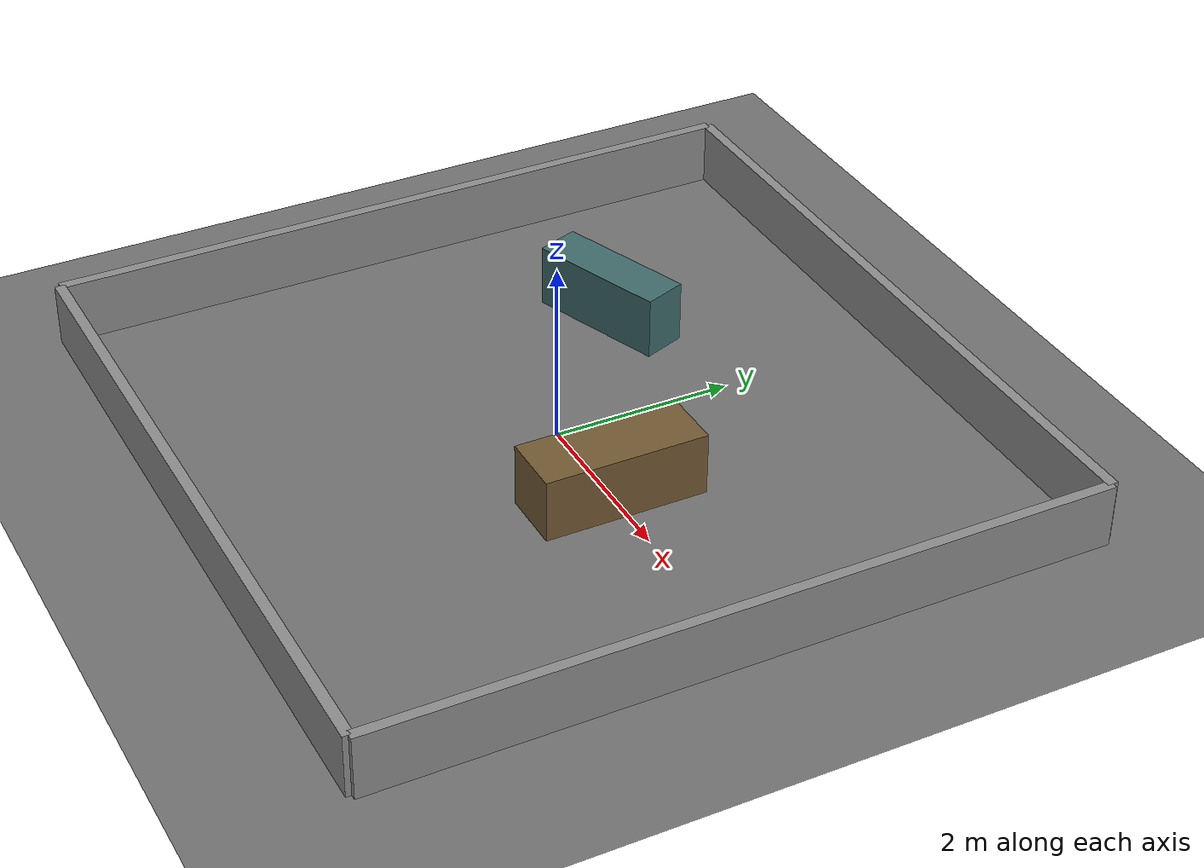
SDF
<?xml version="1.0" ?>
<!--
  SDF 世界文件描述“机器人所在的环境”，而 URDF/Xacro 描述“机器人自身”。
  本文件定义重力、光照和一块有碰撞与摩擦的地面。
-->
<sdf version="1.9">
  <world name="fishbot_world">
    <!-- 世界坐标系使用 Z 轴向上；重力单位是 m/s^2。 -->
    <gravity>0 0 -9.81</gravity>

    <plugin filename="gz-sim-physics-system" name="gz::sim::systems::Physics"/>
    <plugin filename="gz-sim-user-commands-system" name="gz::sim::systems::UserCommands"/>
    <plugin filename="gz-sim-scene-broadcaster-system" name="gz::sim::systems::SceneBroadcaster"/>
    <plugin filename="gz-sim-sensors-system" name="gz::sim::systems::Sensors">
      <render_engine>ogre2</render_engine>
    </plugin>

    <!-- 物理步长越小通常越稳定，但会消耗更多计算资源。 -->
    <physics name="default_physics" type="ignored">
      <max_step_size>0.001</max_step_size>
      <real_time_factor>1.0</real_time_factor>
      <real_time_update_rate>1000</real_time_update_rate>
    </physics>

    <!-- 场景的背景、环境光和阴影。 -->
    <scene>
      <ambient>0.4 0.4 0.4 1</ambient>
      <background>0.7 0.7 0.7 1</background>
      <shadows>true</shadows>
    </scene>

    <!-- 平行光模拟太阳。 -->
    <light name="sun" type="directional">
      <cast_shadows>true</cast_shadows>
      <pose>0 0 10 0 0 0</pose>
      <diffuse>0.8 0.8 0.8 1</diffuse>
      <specular>0.2 0.2 0.2 1</specular>
      <attenuation>
        <range>1000</range>
        <constant>0.9</constant>
        <linear>0.01</linear>
        <quadratic>0.001</quadratic>
      </attenuation>
      <direction>-0.5 0.1 -0.9</direction>
    </light>

    <!--
      static=true 表示地面不会被重力推动。
      plane 的 normal 决定法向；0 0 1 表示地面朝上，位于世界 z=0。
      size 是可视网格的长和宽，单位为米。
    -->
    <model name="ground_plane">
      <static>true</static>
      <link name="ground_link">
        <collision name="ground_collision">
          <geometry>
            <plane>
              <normal>0 0 1</normal>
              <size>100 100</size>
            </plane>
          </geometry>
          <!-- 摩擦系数越大，轮子越不容易打滑。 -->
          <surface>
            <friction>
              <ode>
                <mu>1.0</mu>
                <mu2>1.0</mu2>
              </ode>
            </friction>
          </surface>
        </collision>
        <visual name="ground_visual">
          <geometry>
            <plane>
              <normal>0 0 1</normal>
              <size>100 100</size>
            </plane>
          </geometry>
          <material>
            <ambient>0.35 0.35 0.35 1</ambient>
            <diffuse>0.45 0.45 0.45 1</diffuse>
            <specular>0.05 0.05 0.05 1</specular>
          </material>
        </visual>
      </link>
    </model>

    <model name="wall_north">
      <static>true</static>
      <!-- pose 的格式是 x y z roll pitch yaw；这里 z=0.35 表示 0.7 m 高墙的中心高度。 -->
      <pose>0 4 0.35 0 0 0</pose>
      <link name="link">
        <!-- 每面墙都同时有 collision 和 visual：前者用于碰撞，后者用于显示。 -->
        <collision name="collision"><geometry><box><size>8 0.12 0.7</size></box></geometry></collision>
        <visual name="visual"><geometry><box><size>8 0.12 0.7</size></box></geometry><material><ambient>0.55 0.55 0.55 1</ambient><diffuse>0.55 0.55 0.55 1</diffuse></material></visual>
      </link>
    </model>
    <model name="wall_south">
      <static>true</static>
      <pose>0 -4 0.35 0 0 0</pose>
      <link name="link">
        <collision name="collision"><geometry><box><size>8 0.12 0.7</size></box></geometry></collision>
        <visual name="visual"><geometry><box><size>8 0.12 0.7</size></box></geometry><material><ambient>0.55 0.55 0.55 1</ambient><diffuse>0.55 0.55 0.55 1</diffuse></material></visual>
      </link>
    </model>
    <model name="wall_east">
      <static>true</static>
      <pose>4 0 0.35 0 0 0</pose>
      <link name="link">
        <collision name="collision"><geometry><box><size>0.12 8 0.7</size></box></geometry></collision>
        <visual name="visual"><geometry><box><size>0.12 8 0.7</size></box></geometry><material><ambient>0.55 0.55 0.55 1</ambient><diffuse>0.55 0.55 0.55 1</diffuse></material></visual>
      </link>
    </model>
    <model name="wall_west">
      <static>true</static>
      <pose>-4 0 0.35 0 0 0</pose>
      <link name="link">
        <collision name="collision"><geometry><box><size>0.12 8 0.7</size></box></geometry></collision>
        <visual name="visual"><geometry><box><size>0.12 8 0.7</size></box></geometry><material><ambient>0.55 0.55 0.55 1</ambient><diffuse>0.55 0.55 0.55 1</diffuse></material></visual>
      </link>
    </model>
    <model name="center_obstacle">
      <static>true</static>
      <!-- 中间障碍物用于测试激光雷达、代价地图和导航避障。 -->
      <pose>1.2 0.0 0.35 0 0 0</pose>
      <link name="link">
        <collision name="collision"><geometry><box><size>0.7 1.8 0.7</size></box></geometry></collision>
        <visual name="visual"><geometry><box><size>0.7 1.8 0.7</size></box></geometry><material><ambient>0.45 0.35 0.2 1</ambient><diffuse>0.45 0.35 0.2 1</diffuse></material></visual>
      </link>
    </model>
    <model name="side_obstacle">
      <static>true</static>
      <!-- yaw=0.35 让障碍物斜放，方便观察建图和局部规划是否能处理非正交障碍。 -->
      <pose>-1.7 1.5 0.35 0 0 0.35</pose>
      <link name="link">
        <collision name="collision"><geometry><box><size>1.6 0.5 0.7</size></box></geometry></collision>
        <visual name="visual"><geometry><box><size>1.6 0.5 0.7</size></box></geometry><material><ambient>0.25 0.42 0.42 1</ambient><diffuse>0.25 0.42 0.42 1</diffuse></material></visual>
      </link>
    </model>
  </world>
</sdf>
